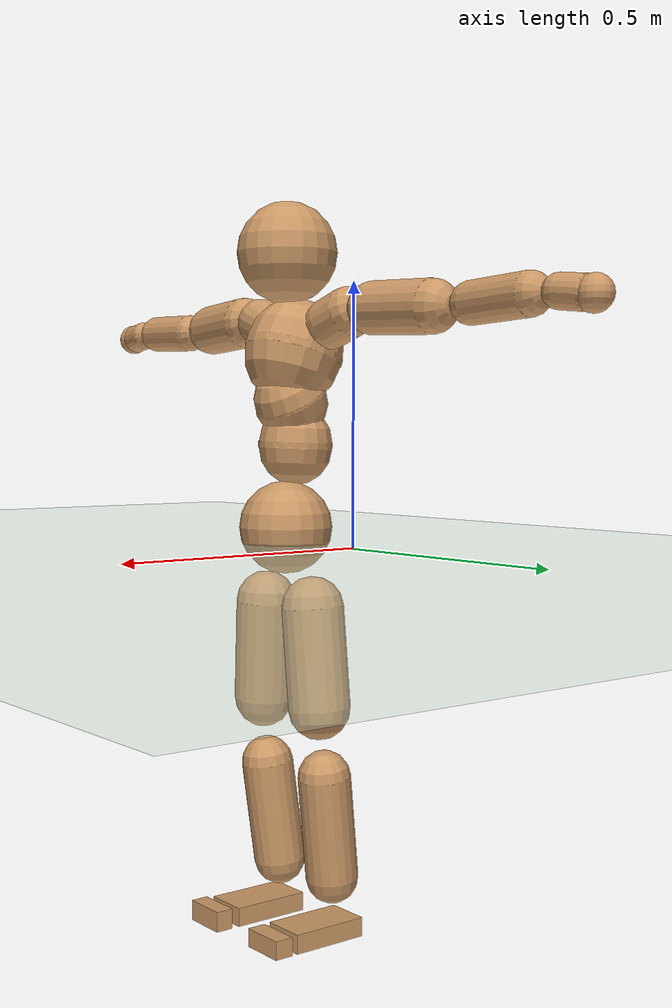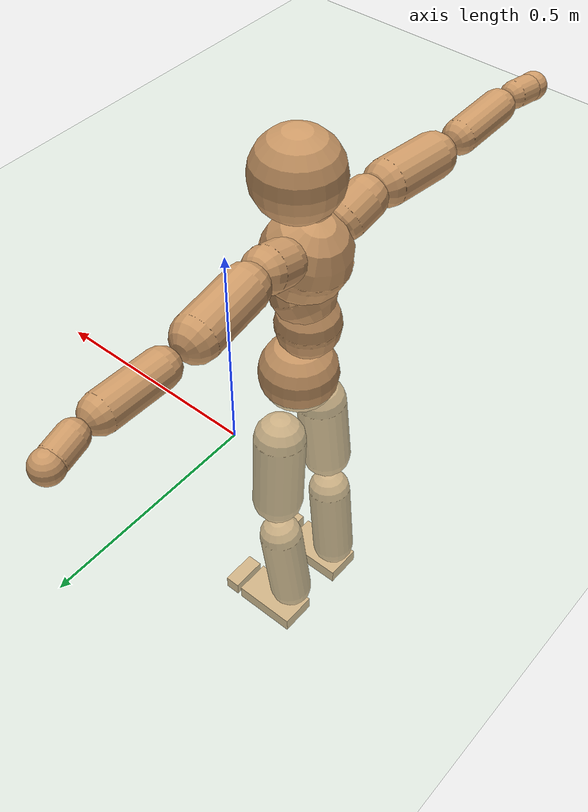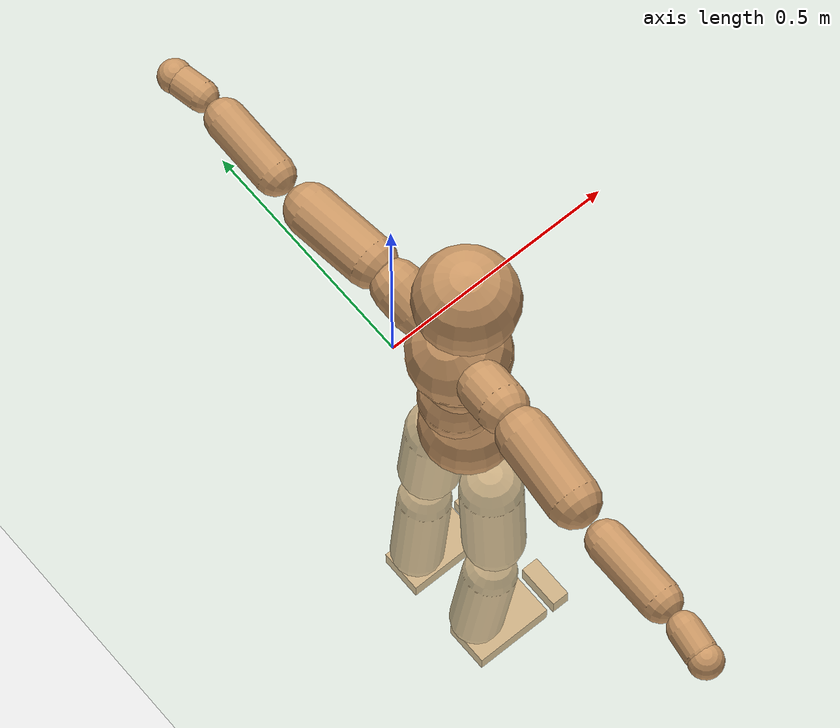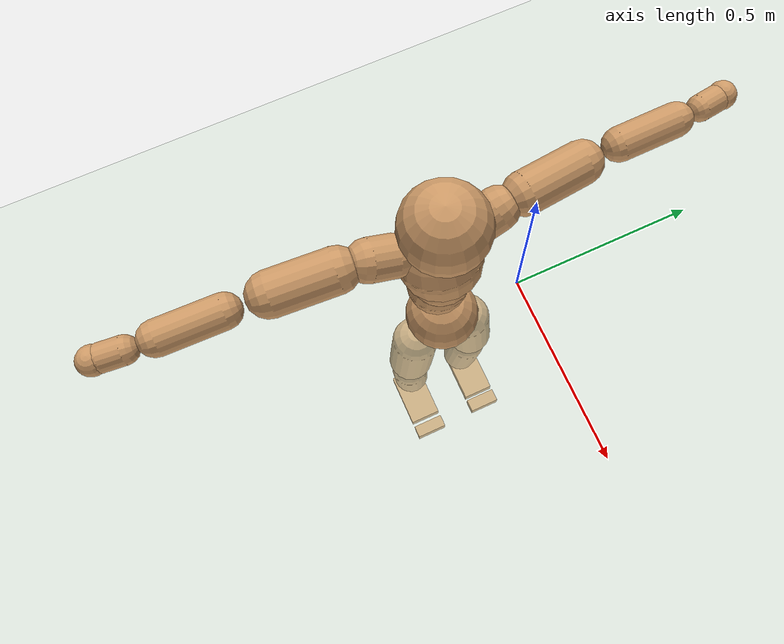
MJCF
<mujoco model="humanoid">
  <compiler coordinate="local"/>
  <default>
    <joint damping="0.0" armature="0.01" stiffness="0.0" limited="true"/>
    <geom conaffinity="1" condim="3" contype="7" margin="0.001" rgba="0.8 0.6 .4 1"/>
  </default>
  <asset>
    <texture type="skybox" builtin="gradient" rgb1=".4 .5 .6" rgb2="0 0 0" width="100" height="100"/>
    <texture builtin="flat" height="1278" mark="cross" markrgb="1 1 1" name="texgeom" random="0.01" rgb1="0.8 0.6 0.4" rgb2="0.8 0.6 0.4" type="cube" width="127"/>
    <texture builtin="checker" height="100" name="texplane" rgb1="0 0 0" rgb2="0.8 0.8 0.8" type="2d" width="100"/>
    <material name="MatPlane" reflectance="0.5" shininess="1" specular="1" texrepeat="60 60" texture="texplane"/>
    <material name="geom" texture="texgeom" texuniform="true"/>
  </asset>
  <worldbody>
    <light cutoff="100" diffuse="1 1 1" dir="-0 0 -1.3" directional="true" exponent="1" pos="0 0 1.3" specular=".1 .1 .1"/>
    <geom conaffinity="1" condim="3" name="floor" pos="0 0 0" rgba="0.8 0.9 0.8 1" size="100 100 .2" type="plane" material="MatPlane"/>
    <body name="Pelvis" pos="-0.0001 -0.2153 0.0298">
      <freejoint name="Pelvis"/>
      <geom type="sphere" contype="1" conaffinity="1" density="4629.6296296296305" size="0.0936" pos="0.0000 0.0000 0.0000" name="Pelvis"/>
      <body name="L_Hip" pos="-0.0066 0.0725 -0.0881">
        <joint name="L_Hip_x" type="hinge" pos="0 0 0" axis="1 0 0" stiffness="800" damping="80" armature="0.02" range="-90.0000 90.0000"/>
        <joint name="L_Hip_y" type="hinge" pos="0 0 0" axis="0 1 0" stiffness="800" damping="80" armature="0.02" range="-90.0000 90.0000"/>
        <joint name="L_Hip_z" type="hinge" pos="0 0 0" axis="0 0 1" stiffness="800" damping="80" armature="0.02" range="-90.0000 90.0000"/>
        <geom type="capsule" contype="1" conaffinity="1" density="2040.816327" fromto="-0.0016 0.0053 -0.0677 -0.0063 0.0213 -0.2709" size="0.0621" name="L_Hip"/>
        <body name="L_Knee" pos="-0.0078 0.0266 -0.3386">
          <joint name="L_Knee_x" type="hinge" pos="0 0 0" axis="1 0 0" stiffness="800" damping="80" armature="0.02" range="-5.6250 5.6250"/>
          <joint name="L_Knee_y" type="hinge" pos="0 0 0" axis="0 1 0" stiffness="800" damping="80" armature="0.02" range="0.0000 180.0000"/>
          <joint name="L_Knee_z" type="hinge" pos="0 0 0" axis="0 0 1" stiffness="800" damping="80" armature="0.02" range="-5.6250 5.6250"/>
          <geom type="capsule" contype="1" conaffinity="1" density="1234.567901" fromto="-0.0086 -0.0023 -0.0712 -0.0342 -0.0094 -0.2849" size="0.0536" name="L_Knee"/>
          <body name="L_Ankle" pos="-0.0428 -0.0117 -0.3562">
            <joint name="L_Ankle_x" type="hinge" pos="0 0 0" axis="1 0 0" stiffness="800" damping="80" armature="0.02" range="-45.0000 45.0000"/>
            <joint name="L_Ankle_y" type="hinge" pos="0 0 0" axis="0 1 0" stiffness="800" damping="80" armature="0.02" range="-90.0000 90.0000"/>
            <joint name="L_Ankle_z" type="hinge" pos="0 0 0" axis="0 0 1" stiffness="800" damping="80" armature="0.02" range="-45.0000 45.0000"/>
            <geom type="box" contype="1" conaffinity="1" density="1000.000012" pos="0.0565 0.0117 -0.0259" size="0.0822 0.0464 0.0196" quat="1.0000 0.0000 0.0000 0.0000" name="L_Ankle"/>
            <body name="L_Toe" pos="0.113 0.0233 -0.0518">
              <joint name="L_Toe_x" type="hinge" pos="0 0 0" axis="1 0 0" stiffness="500" damping="50" armature="0.02" range="-180.0000 180.0000"/>
              <joint name="L_Toe_y" type="hinge" pos="0 0 0" axis="0 1 0" stiffness="500" damping="50" armature="0.02" range="-180.0000 180.0000"/>
              <joint name="L_Toe_z" type="hinge" pos="0 0 0" axis="0 0 1" stiffness="500" damping="50" armature="0.02" range="-180.0000 180.0000"/>
              <geom type="box" contype="1" conaffinity="1" density="1040.745456" pos="0.0575 -0.0117 0.0251" size="0.0196 0.0466 0.0188" quat="1.0000 0.0000 0.0000 0.0000" name="L_Toe"/>
            </body>
          </body>
        </body>
      </body>
      <body name="R_Hip" pos="-0.0039 -0.0701 -0.0871">
        <joint name="R_Hip_x" type="hinge" pos="0 0 0" axis="1 0 0" stiffness="800" damping="80" armature="0.02" range="-90.0000 90.0000"/>
        <joint name="R_Hip_y" type="hinge" pos="0 0 0" axis="0 1 0" stiffness="800" damping="80" armature="0.02" range="-90.0000 90.0000"/>
        <joint name="R_Hip_z" type="hinge" pos="0 0 0" axis="0 0 1" stiffness="800" damping="80" armature="0.02" range="-90.0000 90.0000"/>
        <geom type="capsule" contype="1" conaffinity="1" density="2040.816327" fromto="-0.0021 -0.0062 -0.0689 -0.0083 -0.0247 -0.2755" size="0.0615" name="R_Hip"/>
        <body name="R_Knee" pos="-0.0104 -0.0309 -0.3444">
          <joint name="R_Knee_x" type="hinge" pos="0 0 0" axis="1 0 0" stiffness="800" damping="80" armature="0.02" range="-5.6250 5.6250"/>
          <joint name="R_Knee_y" type="hinge" pos="0 0 0" axis="0 1 0" stiffness="800" damping="80" armature="0.02" range="0.0000 180.0000"/>
          <joint name="R_Knee_z" type="hinge" pos="0 0 0" axis="0 0 1" stiffness="800" damping="80" armature="0.02" range="-5.6250 5.6250"/>
          <geom type="capsule" contype="1" conaffinity="1" density="1234.567901" fromto="-0.0084 0.0027 -0.0712 -0.0338 0.0108 -0.2848" size="0.0539" name="R_Knee"/>
          <body name="R_Ankle" pos="-0.0422 0.0134 -0.3561">
            <joint name="R_Ankle_x" type="hinge" pos="0 0 0" axis="1 0 0" stiffness="800" damping="80" armature="0.02" range="-45.0000 45.0000"/>
            <joint name="R_Ankle_y" type="hinge" pos="0 0 0" axis="0 1 0" stiffness="800" damping="80" armature="0.02" range="-90.0000 90.0000"/>
            <joint name="R_Ankle_z" type="hinge" pos="0 0 0" axis="0 0 1" stiffness="800" damping="80" armature="0.02" range="-45.0000 45.0000"/>
            <geom type="box" contype="1" conaffinity="1" density="1000.000045" pos="0.0586 -0.0112 -0.0218" size="0.0829 0.0472 0.0195" quat="1.0000 0.0000 0.0000 0.0000" name="R_Ankle"/>
            <body name="R_Toe" pos="0.1172 -0.0223 -0.0436">
              <joint name="R_Toe_x" type="hinge" pos="0 0 0" axis="1 0 0" stiffness="500" damping="50" armature="0.02" range="-180.0000 180.0000"/>
              <joint name="R_Toe_y" type="hinge" pos="0 0 0" axis="0 1 0" stiffness="500" damping="50" armature="0.02" range="-180.0000 180.0000"/>
              <joint name="R_Toe_z" type="hinge" pos="0 0 0" axis="0 0 1" stiffness="500" damping="50" armature="0.02" range="-180.0000 180.0000"/>
              <geom type="box" contype="1" conaffinity="1" density="1006.659403" pos="0.0596 0.0112 0.0234" size="0.0186 0.0473 0.0211" quat="1.0000 0.0000 0.0000 0.0000" name="R_Toe"/>
            </body>
          </body>
        </body>
      </body>
      <body name="Torso" pos="-0.0242 -0.0024 0.1022">
        <joint name="Torso_x" type="hinge" pos="0 0 0" axis="1 0 0" stiffness="1000" damping="100" armature="0.02" range="-60.0000 60.0000"/>
        <joint name="Torso_y" type="hinge" pos="0 0 0" axis="0 1 0" stiffness="1000" damping="100" armature="0.02" range="-60.0000 60.0000"/>
        <joint name="Torso_z" type="hinge" pos="0 0 0" axis="0 0 1" stiffness="1000" damping="100" armature="0.02" range="-60.0000 60.0000"/>
        <geom type="capsule" contype="1" conaffinity="1" density="2040.816327" fromto="-0.0007 0.0016 0.0562 -0.0009 0.0020 0.0686" size="0.0744" name="Torso"/>
        <body name="Spine" pos="-0.0016 0.0036 0.1248">
          <joint name="Spine_x" type="hinge" pos="0 0 0" axis="1 0 0" stiffness="1000" damping="100" armature="0.02" range="-60.0000 60.0000"/>
          <joint name="Spine_y" type="hinge" pos="0 0 0" axis="0 1 0" stiffness="1000" damping="100" armature="0.02" range="-60.0000 60.0000"/>
          <joint name="Spine_z" type="hinge" pos="0 0 0" axis="0 0 1" stiffness="1000" damping="100" armature="0.02" range="-60.0000 60.0000"/>
          <geom type="capsule" contype="1" conaffinity="1" density="2040.816327" fromto="0.0127 0.0008 0.0221 0.0155 0.0010 0.0271" size="0.0739" name="Spine"/>
          <body name="Chest" pos="0.0283 0.0018 0.0492">
            <joint name="Chest_x" type="hinge" pos="0 0 0" axis="1 0 0" stiffness="1000" damping="100" armature="0.02" range="-60.0000 60.0000"/>
            <joint name="Chest_y" type="hinge" pos="0 0 0" axis="0 1 0" stiffness="1000" damping="100" armature="0.02" range="-60.0000 60.0000"/>
            <joint name="Chest_z" type="hinge" pos="0 0 0" axis="0 0 1" stiffness="1000" damping="100" armature="0.02" range="-60.0000 60.0000"/>
            <geom type="capsule" contype="1" conaffinity="1" density="2040.816327" fromto="-0.0199 -0.0004 0.0661 -0.0243 -0.0005 0.0807" size="0.0986" name="Chest"/>
            <body name="Neck" pos="-0.0519 -0.0005 0.2064">
              <joint name="Neck_x" type="hinge" pos="0 0 0" axis="1 0 0" stiffness="500" damping="50" armature="0.02" range="-5.6250 5.6250"/>
              <joint name="Neck_y" type="hinge" pos="0 0 0" axis="0 1 0" stiffness="500" damping="50" armature="0.02" range="-90.0000 90.0000"/>
              <joint name="Neck_z" type="hinge" pos="0 0 0" axis="0 0 1" stiffness="500" damping="50" armature="0.02" range="-90.0000 90.0000"/>
              <geom type="capsule" contype="1" conaffinity="1" density="1000" fromto="0.0098 0.0007 0.0119 0.0390 0.0030 0.0475" size="0.0416" name="Neck"/>
              <body name="Head" pos="0.0488 0.0037 0.0594">
                <joint name="Head_x" type="hinge" pos="0 0 0" axis="1 0 0" stiffness="500" damping="50" armature="0.02" range="-5.6250 5.6250"/>
                <joint name="Head_y" type="hinge" pos="0 0 0" axis="0 1 0" stiffness="500" damping="50" armature="0.02" range="-90.0000 90.0000"/>
                <joint name="Head_z" type="hinge" pos="0 0 0" axis="0 0 1" stiffness="500" damping="50" armature="0.02" range="-90.0000 90.0000"/>
                <geom type="sphere" contype="1" conaffinity="1" density="1000" size="0.0994" pos="0.0000 0.0000 0.0000" name="Head"/>
              </body>
            </body>
            <body name="L_Thorax" pos="-0.0378 0.0756 0.1181">
              <joint name="L_Thorax_x" type="hinge" pos="0 0 0" axis="1 0 0" stiffness="500" damping="50" armature="0.02" range="-5.6250 5.6250"/>
              <joint name="L_Thorax_y" type="hinge" pos="0 0 0" axis="0 1 0" stiffness="500" damping="50" armature="0.02" range="-5.6250 5.6250"/>
              <joint name="L_Thorax_z" type="hinge" pos="0 0 0" axis="0 0 1" stiffness="500" damping="50" armature="0.02" range="-5.6250 5.6250"/>
              <geom type="capsule" contype="1" conaffinity="1" density="1000" fromto="-0.0015 0.0175 0.0061 -0.0061 0.0701 0.0244" size="0.0504" name="L_Thorax"/>
              <body name="L_Shoulder" pos="-0.0076 0.0876 0.0305">
                <joint name="L_Shoulder_x" type="hinge" pos="0 0 0" axis="1 0 0" stiffness="500" damping="50" armature="0.02" range="-720.0000 720.0000"/>
                <joint name="L_Shoulder_y" type="hinge" pos="0 0 0" axis="0 1 0" stiffness="500" damping="50" armature="0.02" range="-720.0000 720.0000"/>
                <joint name="L_Shoulder_z" type="hinge" pos="0 0 0" axis="0 0 1" stiffness="500" damping="50" armature="0.02" range="-720.0000 720.0000"/>
                <geom type="capsule" contype="1" conaffinity="1" density="1000" fromto="-0.0053 0.0488 -0.0019 -0.0214 0.1953 -0.0077" size="0.0511" name="L_Shoulder"/>
                <body name="L_Elbow" pos="-0.0267 0.2441 -0.0097">
                  <joint name="L_Elbow_x" type="hinge" pos="0 0 0" axis="1 0 0" stiffness="500" damping="50" armature="0.02" range="-5.6250 5.6250"/>
                  <joint name="L_Elbow_y" type="hinge" pos="0 0 0" axis="0 1 0" stiffness="500" damping="50" armature="0.02" range="-5.6250 5.6250"/>
                  <joint name="L_Elbow_z" type="hinge" pos="0 0 0" axis="0 0 1" stiffness="500" damping="50" armature="0.02" range="-180.0000 0.0000"/>
                  <geom type="capsule" contype="1" conaffinity="1" density="1000" fromto="0.0001 0.0468 0.0016 0.0003 0.1874 0.0066" size="0.0398" name="L_Elbow"/>
                  <body name="L_Wrist" pos="0.0004 0.2342 0.0082">
                    <joint name="L_Wrist_x" type="hinge" pos="0 0 0" axis="1 0 0" stiffness="300" damping="30" armature="0.02" range="-180.0000 180.0000"/>
                    <joint name="L_Wrist_y" type="hinge" pos="0 0 0" axis="0 1 0" stiffness="300" damping="30" armature="0.02" range="-180.0000 180.0000"/>
                    <joint name="L_Wrist_z" type="hinge" pos="0 0 0" axis="0 0 1" stiffness="300" damping="30" armature="0.02" range="-180.0000 180.0000"/>
                    <geom type="capsule" contype="1" conaffinity="1" density="1000" fromto="-0.0028 0.0164 -0.0018 -0.0110 0.0655 -0.0074" size="0.0311" name="L_Wrist"/>
                    <body name="L_Hand" pos="-0.0138 0.0818 -0.0092">
                      <joint name="L_Hand_x" type="hinge" pos="0 0 0" axis="1 0 0" stiffness="300" damping="30" armature="0.02" range="-180.0000 180.0000"/>
                      <joint name="L_Hand_y" type="hinge" pos="0 0 0" axis="0 1 0" stiffness="300" damping="30" armature="0.02" range="-180.0000 180.0000"/>
                      <joint name="L_Hand_z" type="hinge" pos="0 0 0" axis="0 0 1" stiffness="300" damping="30" armature="0.02" range="-180.0000 180.0000"/>
                      <geom type="sphere" contype="1" conaffinity="1" density="1000" size="0.0330" pos="0.0000 0.0000 0.0000" name="L_Hand"/>
                    </body>
                  </body>
                </body>
              </body>
            </body>
            <body name="R_Thorax" pos="-0.0428 -0.0777 0.1158">
              <joint name="R_Thorax_x" type="hinge" pos="0 0 0" axis="1 0 0" stiffness="500" damping="50" armature="0.02" range="-5.6250 5.6250"/>
              <joint name="R_Thorax_y" type="hinge" pos="0 0 0" axis="0 1 0" stiffness="500" damping="50" armature="0.02" range="-5.6250 5.6250"/>
              <joint name="R_Thorax_z" type="hinge" pos="0 0 0" axis="0 0 1" stiffness="500" damping="50" armature="0.02" range="-5.6250 5.6250"/>
              <geom type="capsule" contype="1" conaffinity="1" density="1000" fromto="-0.0020 -0.0186 0.0064 -0.0079 -0.0745 0.0254" size="0.0498" name="R_Thorax"/>
              <body name="R_Shoulder" pos="-0.0099 -0.0931 0.0318">
                <joint name="R_Shoulder_x" type="hinge" pos="0 0 0" axis="1 0 0" stiffness="500" damping="50" armature="0.02" range="-720.0000 720.0000"/>
                <joint name="R_Shoulder_y" type="hinge" pos="0 0 0" axis="0 1 0" stiffness="500" damping="50" armature="0.02" range="-720.0000 720.0000"/>
                <joint name="R_Shoulder_z" type="hinge" pos="0 0 0" axis="0 0 1" stiffness="500" damping="50" armature="0.02" range="-720.0000 720.0000"/>
                <geom type="capsule" contype="1" conaffinity="1" density="1000" fromto="-0.0040 -0.0485 -0.0024 -0.0161 -0.1941 -0.0094" size="0.0527" name="R_Shoulder"/>
                <body name="R_Elbow" pos="-0.0201 -0.2427 -0.0118">
                  <joint name="R_Elbow_x" type="hinge" pos="0 0 0" axis="1 0 0" stiffness="500" damping="50" armature="0.02" range="-5.6250 5.6250"/>
                  <joint name="R_Elbow_y" type="hinge" pos="0 0 0" axis="0 1 0" stiffness="500" damping="50" armature="0.02" range="-5.6250 5.6250"/>
                  <joint name="R_Elbow_z" type="hinge" pos="0 0 0" axis="0 0 1" stiffness="500" damping="50" armature="0.02" range="0.0000 180.0000"/>
                  <geom type="capsule" contype="1" conaffinity="1" density="1000" fromto="-0.0006 -0.0485 0.0016 -0.0022 -0.1938 0.0066" size="0.0402" name="R_Elbow"/>
                  <body name="R_Wrist" pos="-0.0028 -0.2423 0.0082">
                    <joint name="R_Wrist_x" type="hinge" pos="0 0 0" axis="1 0 0" stiffness="300" damping="30" armature="0.02" range="-180.0000 180.0000"/>
                    <joint name="R_Wrist_y" type="hinge" pos="0 0 0" axis="0 1 0" stiffness="300" damping="30" armature="0.02" range="-180.0000 180.0000"/>
                    <joint name="R_Wrist_z" type="hinge" pos="0 0 0" axis="0 0 1" stiffness="300" damping="30" armature="0.02" range="-180.0000 180.0000"/>
                    <geom type="capsule" contype="1" conaffinity="1" density="1000" fromto="-0.0021 -0.0168 -0.0014 -0.0086 -0.0670 -0.0057" size="0.0323" name="R_Wrist"/>
                    <body name="R_Hand" pos="-0.0107 -0.0838 -0.0071">
                      <joint name="R_Hand_x" type="hinge" pos="0 0 0" axis="1 0 0" stiffness="300" damping="30" armature="0.02" range="-180.0000 180.0000"/>
                      <joint name="R_Hand_y" type="hinge" pos="0 0 0" axis="0 1 0" stiffness="300" damping="30" armature="0.02" range="-180.0000 180.0000"/>
                      <joint name="R_Hand_z" type="hinge" pos="0 0 0" axis="0 0 1" stiffness="300" damping="30" armature="0.02" range="-180.0000 180.0000"/>
                      <geom type="sphere" contype="1" conaffinity="1" density="1000" size="0.0337" pos="0.0000 0.0000 0.0000" name="R_Hand"/>
                    </body>
                  </body>
                </body>
              </body>
            </body>
          </body>
        </body>
      </body>
    </body>
  </worldbody>
  <actuator>
    <motor name="L_Hip_x" joint="L_Hip_x" gear="500"/>
    <motor name="L_Hip_y" joint="L_Hip_y" gear="500"/>
    <motor name="L_Hip_z" joint="L_Hip_z" gear="500"/>
    <motor name="L_Knee_x" joint="L_Knee_x" gear="500"/>
    <motor name="L_Knee_y" joint="L_Knee_y" gear="500"/>
    <motor name="L_Knee_z" joint="L_Knee_z" gear="500"/>
    <motor name="L_Ankle_x" joint="L_Ankle_x" gear="500"/>
    <motor name="L_Ankle_y" joint="L_Ankle_y" gear="500"/>
    <motor name="L_Ankle_z" joint="L_Ankle_z" gear="500"/>
    <motor name="L_Toe_x" joint="L_Toe_x" gear="500"/>
    <motor name="L_Toe_y" joint="L_Toe_y" gear="500"/>
    <motor name="L_Toe_z" joint="L_Toe_z" gear="500"/>
    <motor name="R_Hip_x" joint="R_Hip_x" gear="500"/>
    <motor name="R_Hip_y" joint="R_Hip_y" gear="500"/>
    <motor name="R_Hip_z" joint="R_Hip_z" gear="500"/>
    <motor name="R_Knee_x" joint="R_Knee_x" gear="500"/>
    <motor name="R_Knee_y" joint="R_Knee_y" gear="500"/>
    <motor name="R_Knee_z" joint="R_Knee_z" gear="500"/>
    <motor name="R_Ankle_x" joint="R_Ankle_x" gear="500"/>
    <motor name="R_Ankle_y" joint="R_Ankle_y" gear="500"/>
    <motor name="R_Ankle_z" joint="R_Ankle_z" gear="500"/>
    <motor name="R_Toe_x" joint="R_Toe_x" gear="500"/>
    <motor name="R_Toe_y" joint="R_Toe_y" gear="500"/>
    <motor name="R_Toe_z" joint="R_Toe_z" gear="500"/>
    <motor name="Torso_x" joint="Torso_x" gear="500"/>
    <motor name="Torso_y" joint="Torso_y" gear="500"/>
    <motor name="Torso_z" joint="Torso_z" gear="500"/>
    <motor name="Spine_x" joint="Spine_x" gear="500"/>
    <motor name="Spine_y" joint="Spine_y" gear="500"/>
    <motor name="Spine_z" joint="Spine_z" gear="500"/>
    <motor name="Chest_x" joint="Chest_x" gear="500"/>
    <motor name="Chest_y" joint="Chest_y" gear="500"/>
    <motor name="Chest_z" joint="Chest_z" gear="500"/>
    <motor name="Neck_x" joint="Neck_x" gear="500"/>
    <motor name="Neck_y" joint="Neck_y" gear="500"/>
    <motor name="Neck_z" joint="Neck_z" gear="500"/>
    <motor name="Head_x" joint="Head_x" gear="500"/>
    <motor name="Head_y" joint="Head_y" gear="500"/>
    <motor name="Head_z" joint="Head_z" gear="500"/>
    <motor name="L_Thorax_x" joint="L_Thorax_x" gear="500"/>
    <motor name="L_Thorax_y" joint="L_Thorax_y" gear="500"/>
    <motor name="L_Thorax_z" joint="L_Thorax_z" gear="500"/>
    <motor name="L_Shoulder_x" joint="L_Shoulder_x" gear="500"/>
    <motor name="L_Shoulder_y" joint="L_Shoulder_y" gear="500"/>
    <motor name="L_Shoulder_z" joint="L_Shoulder_z" gear="500"/>
    <motor name="L_Elbow_x" joint="L_Elbow_x" gear="500"/>
    <motor name="L_Elbow_y" joint="L_Elbow_y" gear="500"/>
    <motor name="L_Elbow_z" joint="L_Elbow_z" gear="500"/>
    <motor name="L_Wrist_x" joint="L_Wrist_x" gear="500"/>
    <motor name="L_Wrist_y" joint="L_Wrist_y" gear="500"/>
    <motor name="L_Wrist_z" joint="L_Wrist_z" gear="500"/>
    <motor name="L_Hand_x" joint="L_Hand_x" gear="500"/>
    <motor name="L_Hand_y" joint="L_Hand_y" gear="500"/>
    <motor name="L_Hand_z" joint="L_Hand_z" gear="500"/>
    <motor name="R_Thorax_x" joint="R_Thorax_x" gear="500"/>
    <motor name="R_Thorax_y" joint="R_Thorax_y" gear="500"/>
    <motor name="R_Thorax_z" joint="R_Thorax_z" gear="500"/>
    <motor name="R_Shoulder_x" joint="R_Shoulder_x" gear="500"/>
    <motor name="R_Shoulder_y" joint="R_Shoulder_y" gear="500"/>
    <motor name="R_Shoulder_z" joint="R_Shoulder_z" gear="500"/>
    <motor name="R_Elbow_x" joint="R_Elbow_x" gear="500"/>
    <motor name="R_Elbow_y" joint="R_Elbow_y" gear="500"/>
    <motor name="R_Elbow_z" joint="R_Elbow_z" gear="500"/>
    <motor name="R_Wrist_x" joint="R_Wrist_x" gear="500"/>
    <motor name="R_Wrist_y" joint="R_Wrist_y" gear="500"/>
    <motor name="R_Wrist_z" joint="R_Wrist_z" gear="500"/>
    <motor name="R_Hand_x" joint="R_Hand_x" gear="500"/>
    <motor name="R_Hand_y" joint="R_Hand_y" gear="500"/>
    <motor name="R_Hand_z" joint="R_Hand_z" gear="500"/>
  </actuator>
  <contact>
    <exclude body1="Torso" body2="Chest"/>
    <exclude body1="Head" body2="Chest"/>
    <exclude body1="R_Knee" body2="R_Toe"/>
    <exclude body1="R_Knee" body2="L_Ankle"/>
    <exclude body1="R_Knee" body2="L_Toe"/>
    <exclude body1="L_Knee" body2="L_Toe"/>
    <exclude body1="L_Knee" body2="R_Ankle"/>
    <exclude body1="L_Knee" body2="R_Toe"/>
    <exclude body1="L_Shoulder" body2="Chest"/>
    <exclude body1="R_Shoulder" body2="Chest"/>
  </contact>
  <sensor/>
  <size njmax="700" nconmax="700"/>
</mujoco>
